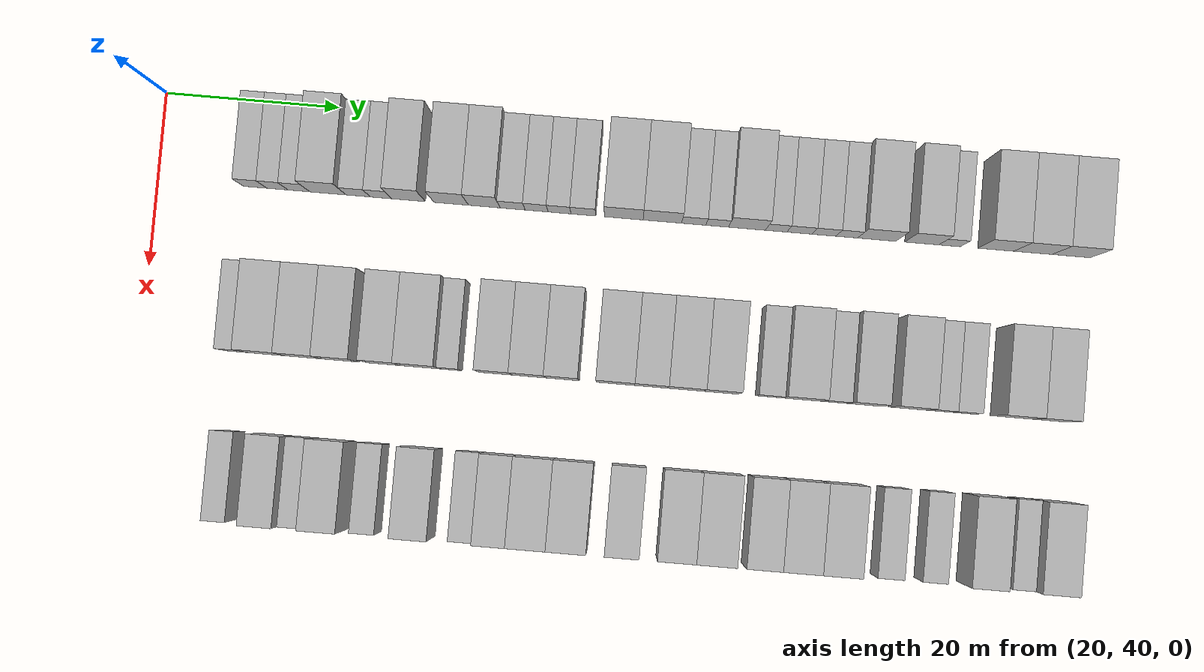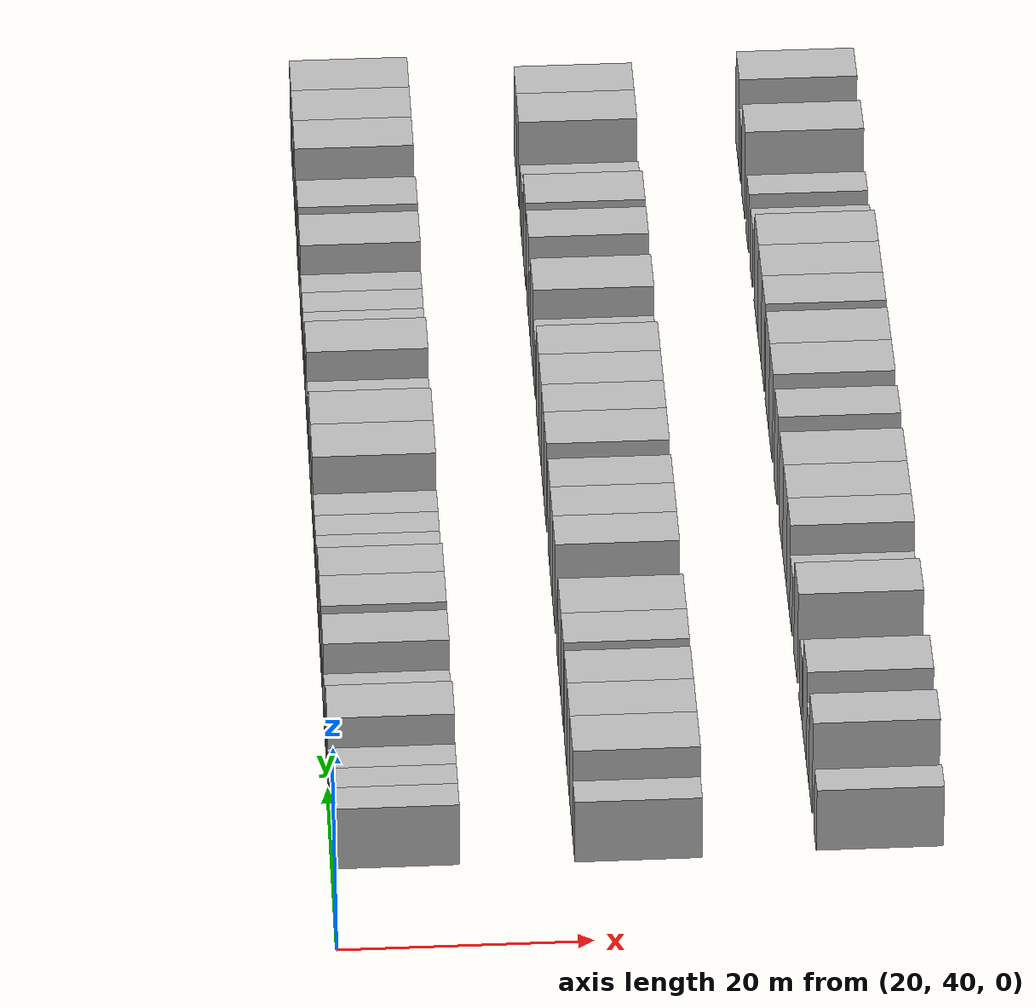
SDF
<sdf version="1.6">
 <world name="default">
  <model name="building_74">
   <static>1</static>
   <pose>25.0000 51.2624 0 0.000000 0.000000 0.000000</pose>
   <link name="link">
    <pose>0 0 3.00 0 0 0</pose>
    <collision name="collision"><geometry><box><size>10.0000 2.6960 6.0000</size></box></geometry></collision>
    <visual name="visual">
     <cast_shadows>0</cast_shadows>
     <geometry><box><size>10.0000 2.6960 6.0000</size></box></geometry>
     <material>
      <script>
       <uri>model://HANNAS_wall/materials/scripts</uri>
       <uri>model://HANNAS_wall/materials/textures</uri>
       <name>vrc/HANNAS_wall</name>
      </script>
     </material>
    </visual>
   </link>
  </model>
  <model name="building_75">
   <static>1</static>
   <pose>25.0000 53.8278 0 0.000000 0.000000 0.000000</pose>
   <link name="link">
    <pose>0 0 3.00 0 0 0</pose>
    <collision name="collision"><geometry><box><size>10.0000 2.4350 6.0000</size></box></geometry></collision>
    <visual name="visual">
     <cast_shadows>0</cast_shadows>
     <geometry><box><size>10.0000 2.4350 6.0000</size></box></geometry>
     <material>
      <script>
       <uri>model://HANNAS_wall/materials/scripts</uri>
       <uri>model://HANNAS_wall/materials/textures</uri>
       <name>vrc/HANNAS_wall</name>
      </script>
     </material>
    </visual>
   </link>
  </model>
  <model name="building_76">
   <static>1</static>
   <pose>25.0000 56.3023 0 0.000000 0.000000 0.000000</pose>
   <link name="link">
    <pose>0 0 3.00 0 0 0</pose>
    <collision name="collision"><geometry><box><size>10.0000 2.5139 6.0000</size></box></geometry></collision>
    <visual name="visual">
     <cast_shadows>0</cast_shadows>
     <geometry><box><size>10.0000 2.5139 6.0000</size></box></geometry>
     <material>
      <script>
       <uri>model://HANNAS_wall/materials/scripts</uri>
       <uri>model://HANNAS_wall/materials/textures</uri>
       <name>vrc/HANNAS_wall</name>
      </script>
     </material>
    </visual>
   </link>
  </model>
  <model name="building_77">
   <static>1</static>
   <pose>25.0000 59.6471 0 0.000000 0.000000 0.000000</pose>
   <link name="link">
    <pose>0 0 4.50 0 0 0</pose>
    <collision name="collision"><geometry><box><size>10.0000 4.1757 9.0000</size></box></geometry></collision>
    <visual name="visual">
     <cast_shadows>0</cast_shadows>
     <geometry><box><size>10.0000 4.1757 9.0000</size></box></geometry>
     <material>
      <script>
       <uri>model://HANNAS_wall/materials/scripts</uri>
       <uri>model://HANNAS_wall/materials/textures</uri>
       <name>vrc/HANNAS_wall</name>
      </script>
     </material>
    </visual>
   </link>
  </model>
  <model name="building_78">
   <static>1</static>
   <pose>25.0000 63.1370 0 0.000000 0.000000 0.000000</pose>
   <link name="link">
    <pose>0 0 3.00 0 0 0</pose>
    <collision name="collision"><geometry><box><size>10.0000 2.8041 6.0000</size></box></geometry></collision>
    <visual name="visual">
     <cast_shadows>0</cast_shadows>
     <geometry><box><size>10.0000 2.8041 6.0000</size></box></geometry>
     <material>
      <script>
       <uri>model://HANNAS_wall/materials/scripts</uri>
       <uri>model://HANNAS_wall/materials/textures</uri>
       <name>vrc/HANNAS_wall</name>
      </script>
     </material>
    </visual>
   </link>
  </model>
  <model name="building_79">
   <static>1</static>
   <pose>25.0000 65.7645 0 0.000000 0.000000 0.000000</pose>
   <link name="link">
    <pose>0 0 3.00 0 0 0</pose>
    <collision name="collision"><geometry><box><size>10.0000 2.4508 6.0000</size></box></geometry></collision>
    <visual name="visual">
     <cast_shadows>0</cast_shadows>
     <geometry><box><size>10.0000 2.4508 6.0000</size></box></geometry>
     <material>
      <script>
       <uri>model://HANNAS_wall/materials/scripts</uri>
       <uri>model://HANNAS_wall/materials/textures</uri>
       <name>vrc/HANNAS_wall</name>
      </script>
     </material>
    </visual>
   </link>
  </model>
  <model name="building_80">
   <static>1</static>
   <pose>25.0000 68.9372 0 0.000000 0.000000 0.000000</pose>
   <link name="link">
    <pose>0 0 4.50 0 0 0</pose>
    <collision name="collision"><geometry><box><size>10.0000 3.8946 9.0000</size></box></geometry></collision>
    <visual name="visual">
     <cast_shadows>0</cast_shadows>
     <geometry><box><size>10.0000 3.8946 9.0000</size></box></geometry>
     <material>
      <script>
       <uri>model://HANNAS_wall/materials/scripts</uri>
       <uri>model://HANNAS_wall/materials/textures</uri>
       <name>vrc/HANNAS_wall</name>
      </script>
     </material>
    </visual>
   </link>
  </model>
  <model name="building_81">
   <static>1</static>
   <pose>25.0000 73.8736 0 0.000000 0.000000 0.000000</pose>
   <link name="link">
    <pose>0 0 4.50 0 0 0</pose>
    <collision name="collision"><geometry><box><size>10.0000 3.9782 9.0000</size></box></geometry></collision>
    <visual name="visual">
     <cast_shadows>0</cast_shadows>
     <geometry><box><size>10.0000 3.9782 9.0000</size></box></geometry>
     <material>
      <script>
       <uri>model://HANNAS_wall/materials/scripts</uri>
       <uri>model://HANNAS_wall/materials/textures</uri>
       <name>vrc/HANNAS_wall</name>
      </script>
     </material>
    </visual>
   </link>
  </model>
  <model name="building_82">
   <static>1</static>
   <pose>25.0000 77.6937 0 0.000000 0.000000 0.000000</pose>
   <link name="link">
    <pose>0 0 4.50 0 0 0</pose>
    <collision name="collision"><geometry><box><size>10.0000 3.6619 9.0000</size></box></geometry></collision>
    <visual name="visual">
     <cast_shadows>0</cast_shadows>
     <geometry><box><size>10.0000 3.6619 9.0000</size></box></geometry>
     <material>
      <script>
       <uri>model://HANNAS_wall/materials/scripts</uri>
       <uri>model://HANNAS_wall/materials/textures</uri>
       <name>vrc/HANNAS_wall</name>
      </script>
     </material>
    </visual>
   </link>
  </model>
  <model name="building_83">
   <static>1</static>
   <pose>25.0000 80.9645 0 0.000000 0.000000 0.000000</pose>
   <link name="link">
    <pose>0 0 3.00 0 0 0</pose>
    <collision name="collision"><geometry><box><size>10.0000 2.8796 6.0000</size></box></geometry></collision>
    <visual name="visual">
     <cast_shadows>0</cast_shadows>
     <geometry><box><size>10.0000 2.8796 6.0000</size></box></geometry>
     <material>
      <script>
       <uri>model://HANNAS_wall/materials/scripts</uri>
       <uri>model://HANNAS_wall/materials/textures</uri>
       <name>vrc/HANNAS_wall</name>
      </script>
     </material>
    </visual>
   </link>
  </model>
  <model name="building_84">
   <static>1</static>
   <pose>25.0000 83.7266 0 0.000000 0.000000 0.000000</pose>
   <link name="link">
    <pose>0 0 3.00 0 0 0</pose>
    <collision name="collision"><geometry><box><size>10.0000 2.6447 6.0000</size></box></geometry></collision>
    <visual name="visual">
     <cast_shadows>0</cast_shadows>
     <geometry><box><size>10.0000 2.6447 6.0000</size></box></geometry>
     <material>
      <script>
       <uri>model://HANNAS_wall/materials/scripts</uri>
       <uri>model://HANNAS_wall/materials/textures</uri>
       <name>vrc/HANNAS_wall</name>
      </script>
     </material>
    </visual>
   </link>
  </model>
  <model name="building_85">
   <static>1</static>
   <pose>25.0000 86.3646 0 0.000000 0.000000 0.000000</pose>
   <link name="link">
    <pose>0 0 3.00 0 0 0</pose>
    <collision name="collision"><geometry><box><size>10.0000 2.6312 6.0000</size></box></geometry></collision>
    <visual name="visual">
     <cast_shadows>0</cast_shadows>
     <geometry><box><size>10.0000 2.6312 6.0000</size></box></geometry>
     <material>
      <script>
       <uri>model://HANNAS_wall/materials/scripts</uri>
       <uri>model://HANNAS_wall/materials/textures</uri>
       <name>vrc/HANNAS_wall</name>
      </script>
     </material>
    </visual>
   </link>
  </model>
  <model name="building_86">
   <static>1</static>
   <pose>25.0000 89.1039 0 0.000000 0.000000 0.000000</pose>
   <link name="link">
    <pose>0 0 3.00 0 0 0</pose>
    <collision name="collision"><geometry><box><size>10.0000 2.8476 6.0000</size></box></geometry></collision>
    <visual name="visual">
     <cast_shadows>0</cast_shadows>
     <geometry><box><size>10.0000 2.8476 6.0000</size></box></geometry>
     <material>
      <script>
       <uri>model://HANNAS_wall/materials/scripts</uri>
       <uri>model://HANNAS_wall/materials/textures</uri>
       <name>vrc/HANNAS_wall</name>
      </script>
     </material>
    </visual>
   </link>
  </model>
  <model name="building_87">
   <static>1</static>
   <pose>25.0000 93.7461 0 0.000000 0.000000 0.000000</pose>
   <link name="link">
    <pose>0 0 4.50 0 0 0</pose>
    <collision name="collision"><geometry><box><size>10.0000 4.4367 9.0000</size></box></geometry></collision>
    <visual name="visual">
     <cast_shadows>0</cast_shadows>
     <geometry><box><size>10.0000 4.4367 9.0000</size></box></geometry>
     <material>
      <script>
       <uri>model://HANNAS_wall/materials/scripts</uri>
       <uri>model://HANNAS_wall/materials/textures</uri>
       <name>vrc/HANNAS_wall</name>
      </script>
     </material>
    </visual>
   </link>
  </model>
  <model name="building_88">
   <static>1</static>
   <pose>25.0000 98.1743 0 0.000000 0.000000 0.000000</pose>
   <link name="link">
    <pose>0 0 4.50 0 0 0</pose>
    <collision name="collision"><geometry><box><size>10.0000 4.4197 9.0000</size></box></geometry></collision>
    <visual name="visual">
     <cast_shadows>0</cast_shadows>
     <geometry><box><size>10.0000 4.4197 9.0000</size></box></geometry>
     <material>
      <script>
       <uri>model://HANNAS_wall/materials/scripts</uri>
       <uri>model://HANNAS_wall/materials/textures</uri>
       <name>vrc/HANNAS_wall</name>
      </script>
     </material>
    </visual>
   </link>
  </model>
  <model name="building_89">
   <static>1</static>
   <pose>25.0000 101.7830 0 0.000000 0.000000 0.000000</pose>
   <link name="link">
    <pose>0 0 3.00 0 0 0</pose>
    <collision name="collision"><geometry><box><size>10.0000 2.7978 6.0000</size></box></geometry></collision>
    <visual name="visual">
     <cast_shadows>0</cast_shadows>
     <geometry><box><size>10.0000 2.7978 6.0000</size></box></geometry>
     <material>
      <script>
       <uri>model://HANNAS_wall/materials/scripts</uri>
       <uri>model://HANNAS_wall/materials/textures</uri>
       <name>vrc/HANNAS_wall</name>
      </script>
     </material>
    </visual>
   </link>
  </model>
  <model name="building_90">
   <static>1</static>
   <pose>25.0000 104.4857 0 0.000000 0.000000 0.000000</pose>
   <link name="link">
    <pose>0 0 3.00 0 0 0</pose>
    <collision name="collision"><geometry><box><size>10.0000 2.6077 6.0000</size></box></geometry></collision>
    <visual name="visual">
     <cast_shadows>0</cast_shadows>
     <geometry><box><size>10.0000 2.6077 6.0000</size></box></geometry>
     <material>
      <script>
       <uri>model://HANNAS_wall/materials/scripts</uri>
       <uri>model://HANNAS_wall/materials/textures</uri>
       <name>vrc/HANNAS_wall</name>
      </script>
     </material>
    </visual>
   </link>
  </model>
  <model name="building_91">
   <static>1</static>
   <pose>25.0000 107.9241 0 0.000000 0.000000 0.000000</pose>
   <link name="link">
    <pose>0 0 4.50 0 0 0</pose>
    <collision name="collision"><geometry><box><size>10.0000 4.2691 9.0000</size></box></geometry></collision>
    <visual name="visual">
     <cast_shadows>0</cast_shadows>
     <geometry><box><size>10.0000 4.2691 9.0000</size></box></geometry>
     <material>
      <script>
       <uri>model://HANNAS_wall/materials/scripts</uri>
       <uri>model://HANNAS_wall/materials/textures</uri>
       <name>vrc/HANNAS_wall</name>
      </script>
     </material>
    </visual>
   </link>
  </model>
  <model name="building_92">
   <static>1</static>
   <pose>25.0000 111.2944 0 0.000000 0.000000 0.000000</pose>
   <link name="link">
    <pose>0 0 3.00 0 0 0</pose>
    <collision name="collision"><geometry><box><size>10.0000 2.4715 6.0000</size></box></geometry></collision>
    <visual name="visual">
     <cast_shadows>0</cast_shadows>
     <geometry><box><size>10.0000 2.4715 6.0000</size></box></geometry>
     <material>
      <script>
       <uri>model://HANNAS_wall/materials/scripts</uri>
       <uri>model://HANNAS_wall/materials/textures</uri>
       <name>vrc/HANNAS_wall</name>
      </script>
     </material>
    </visual>
   </link>
  </model>
  <model name="building_93">
   <static>1</static>
   <pose>25.0000 113.9796 0 0.000000 0.000000 0.000000</pose>
   <link name="link">
    <pose>0 0 3.00 0 0 0</pose>
    <collision name="collision"><geometry><box><size>10.0000 2.8988 6.0000</size></box></geometry></collision>
    <visual name="visual">
     <cast_shadows>0</cast_shadows>
     <geometry><box><size>10.0000 2.8988 6.0000</size></box></geometry>
     <material>
      <script>
       <uri>model://HANNAS_wall/materials/scripts</uri>
       <uri>model://HANNAS_wall/materials/textures</uri>
       <name>vrc/HANNAS_wall</name>
      </script>
     </material>
    </visual>
   </link>
  </model>
  <model name="building_94">
   <static>1</static>
   <pose>25.0000 116.7982 0 0.000000 0.000000 0.000000</pose>
   <link name="link">
    <pose>0 0 3.00 0 0 0</pose>
    <collision name="collision"><geometry><box><size>10.0000 2.7384 6.0000</size></box></geometry></collision>
    <visual name="visual">
     <cast_shadows>0</cast_shadows>
     <geometry><box><size>10.0000 2.7384 6.0000</size></box></geometry>
     <material>
      <script>
       <uri>model://HANNAS_wall/materials/scripts</uri>
       <uri>model://HANNAS_wall/materials/textures</uri>
       <name>vrc/HANNAS_wall</name>
      </script>
     </material>
    </visual>
   </link>
  </model>
  <model name="building_95">
   <static>1</static>
   <pose>25.0000 119.4138 0 0.000000 0.000000 0.000000</pose>
   <link name="link">
    <pose>0 0 3.00 0 0 0</pose>
    <collision name="collision"><geometry><box><size>10.0000 2.4930 6.0000</size></box></geometry></collision>
    <visual name="visual">
     <cast_shadows>0</cast_shadows>
     <geometry><box><size>10.0000 2.4930 6.0000</size></box></geometry>
     <material>
      <script>
       <uri>model://HANNAS_wall/materials/scripts</uri>
       <uri>model://HANNAS_wall/materials/textures</uri>
       <name>vrc/HANNAS_wall</name>
      </script>
     </material>
    </visual>
   </link>
  </model>
  <model name="building_96">
   <static>1</static>
   <pose>25.0000 122.8654 0 0.000000 0.000000 0.000000</pose>
   <link name="link">
    <pose>0 0 4.50 0 0 0</pose>
    <collision name="collision"><geometry><box><size>10.0000 4.4101 9.0000</size></box></geometry></collision>
    <visual name="visual">
     <cast_shadows>0</cast_shadows>
     <geometry><box><size>10.0000 4.4101 9.0000</size></box></geometry>
     <material>
      <script>
       <uri>model://HANNAS_wall/materials/scripts</uri>
       <uri>model://HANNAS_wall/materials/textures</uri>
       <name>vrc/HANNAS_wall</name>
      </script>
     </material>
    </visual>
   </link>
  </model>
  <model name="building_97">
   <static>1</static>
   <pose>25.0000 128.0250 0 0.000000 0.000000 0.000000</pose>
   <link name="link">
    <pose>0 0 4.50 0 0 0</pose>
    <collision name="collision"><geometry><box><size>10.0000 3.9091 9.0000</size></box></geometry></collision>
    <visual name="visual">
     <cast_shadows>0</cast_shadows>
     <geometry><box><size>10.0000 3.9091 9.0000</size></box></geometry>
     <material>
      <script>
       <uri>model://HANNAS_wall/materials/scripts</uri>
       <uri>model://HANNAS_wall/materials/textures</uri>
       <name>vrc/HANNAS_wall</name>
      </script>
     </material>
    </visual>
   </link>
  </model>
  <model name="building_98">
   <static>1</static>
   <pose>25.0000 131.2295 0 0.000000 0.000000 0.000000</pose>
   <link name="link">
    <pose>0 0 3.00 0 0 0</pose>
    <collision name="collision"><geometry><box><size>10.0000 2.4999 6.0000</size></box></geometry></collision>
    <visual name="visual">
     <cast_shadows>0</cast_shadows>
     <geometry><box><size>10.0000 2.4999 6.0000</size></box></geometry>
     <material>
      <script>
       <uri>model://HANNAS_wall/materials/scripts</uri>
       <uri>model://HANNAS_wall/materials/textures</uri>
       <name>vrc/HANNAS_wall</name>
      </script>
     </material>
    </visual>
   </link>
  </model>
  <model name="building_99">
   <static>1</static>
   <pose>25.0000 136.5553 0 0.000000 0.000000 0.000000</pose>
   <link name="link">
    <pose>0 0 4.50 0 0 0</pose>
    <collision name="collision"><geometry><box><size>10.0000 4.1518 9.0000</size></box></geometry></collision>
    <visual name="visual">
     <cast_shadows>0</cast_shadows>
     <geometry><box><size>10.0000 4.1518 9.0000</size></box></geometry>
     <material>
      <script>
       <uri>model://HANNAS_wall/materials/scripts</uri>
       <uri>model://HANNAS_wall/materials/textures</uri>
       <name>vrc/HANNAS_wall</name>
      </script>
     </material>
    </visual>
   </link>
  </model>
  <model name="building_100">
   <static>1</static>
   <pose>25.0000 140.8244 0 0.000000 0.000000 0.000000</pose>
   <link name="link">
    <pose>0 0 4.50 0 0 0</pose>
    <collision name="collision"><geometry><box><size>10.0000 4.3863 9.0000</size></box></geometry></collision>
    <visual name="visual">
     <cast_shadows>0</cast_shadows>
     <geometry><box><size>10.0000 4.3863 9.0000</size></box></geometry>
     <material>
      <script>
       <uri>model://HANNAS_wall/materials/scripts</uri>
       <uri>model://HANNAS_wall/materials/textures</uri>
       <name>vrc/HANNAS_wall</name>
      </script>
     </material>
    </visual>
   </link>
  </model>
  <model name="building_101">
   <static>1</static>
   <pose>25.0000 145.2146 0 0.000000 0.000000 0.000000</pose>
   <link name="link">
    <pose>0 0 4.50 0 0 0</pose>
    <collision name="collision"><geometry><box><size>10.0000 4.3941 9.0000</size></box></geometry></collision>
    <visual name="visual">
     <cast_shadows>0</cast_shadows>
     <geometry><box><size>10.0000 4.3941 9.0000</size></box></geometry>
     <material>
      <script>
       <uri>model://HANNAS_wall/materials/scripts</uri>
       <uri>model://HANNAS_wall/materials/textures</uri>
       <name>vrc/HANNAS_wall</name>
      </script>
     </material>
    </visual>
   </link>
  </model>
  <model name="building_196">
   <static>1</static>
   <pose>44.0000 51.0408 0 0.000000 0.000000 0.000000</pose>
   <link name="link">
    <pose>0 0 3.00 0 0 0</pose>
    <collision name="collision"><geometry><box><size>10.0000 2.6519 6.0000</size></box></geometry></collision>
    <visual name="visual">
     <cast_shadows>0</cast_shadows>
     <geometry><box><size>10.0000 2.6519 6.0000</size></box></geometry>
     <material>
      <script>
       <uri>model://HANNAS_wall/materials/scripts</uri>
       <uri>model://HANNAS_wall/materials/textures</uri>
       <name>vrc/HANNAS_wall</name>
      </script>
     </material>
    </visual>
   </link>
  </model>
  <model name="building_197">
   <static>1</static>
   <pose>44.0000 54.5911 0 0.000000 0.000000 0.000000</pose>
   <link name="link">
    <pose>0 0 4.50 0 0 0</pose>
    <collision name="collision"><geometry><box><size>10.0000 4.4487 9.0000</size></box></geometry></collision>
    <visual name="visual">
     <cast_shadows>0</cast_shadows>
     <geometry><box><size>10.0000 4.4487 9.0000</size></box></geometry>
     <material>
      <script>
       <uri>model://HANNAS_wall/materials/scripts</uri>
       <uri>model://HANNAS_wall/materials/textures</uri>
       <name>vrc/HANNAS_wall</name>
      </script>
     </material>
    </visual>
   </link>
  </model>
  <model name="building_198">
   <static>1</static>
   <pose>44.0000 58.9009 0 0.000000 0.000000 0.000000</pose>
   <link name="link">
    <pose>0 0 4.50 0 0 0</pose>
    <collision name="collision"><geometry><box><size>10.0000 4.1709 9.0000</size></box></geometry></collision>
    <visual name="visual">
     <cast_shadows>0</cast_shadows>
     <geometry><box><size>10.0000 4.1709 9.0000</size></box></geometry>
     <material>
      <script>
       <uri>model://HANNAS_wall/materials/scripts</uri>
       <uri>model://HANNAS_wall/materials/textures</uri>
       <name>vrc/HANNAS_wall</name>
      </script>
     </material>
    </visual>
   </link>
  </model>
  <model name="building_199">
   <static>1</static>
   <pose>44.0000 63.0461 0 0.000000 0.000000 0.000000</pose>
   <link name="link">
    <pose>0 0 4.50 0 0 0</pose>
    <collision name="collision"><geometry><box><size>10.0000 4.1196 9.0000</size></box></geometry></collision>
    <visual name="visual">
     <cast_shadows>0</cast_shadows>
     <geometry><box><size>10.0000 4.1196 9.0000</size></box></geometry>
     <material>
      <script>
       <uri>model://HANNAS_wall/materials/scripts</uri>
       <uri>model://HANNAS_wall/materials/textures</uri>
       <name>vrc/HANNAS_wall</name>
      </script>
     </material>
    </visual>
   </link>
  </model>
  <model name="building_200">
   <static>1</static>
   <pose>44.0000 68.0249 0 0.000000 0.000000 0.000000</pose>
   <link name="link">
    <pose>0 0 4.50 0 0 0</pose>
    <collision name="collision"><geometry><box><size>10.0000 3.8380 9.0000</size></box></geometry></collision>
    <visual name="visual">
     <cast_shadows>0</cast_shadows>
     <geometry><box><size>10.0000 3.8380 9.0000</size></box></geometry>
     <material>
      <script>
       <uri>model://HANNAS_wall/materials/scripts</uri>
       <uri>model://HANNAS_wall/materials/textures</uri>
       <name>vrc/HANNAS_wall</name>
      </script>
     </material>
    </visual>
   </link>
  </model>
  <model name="building_201">
   <static>1</static>
   <pose>44.0000 72.1924 0 0.000000 0.000000 0.000000</pose>
   <link name="link">
    <pose>0 0 4.50 0 0 0</pose>
    <collision name="collision"><geometry><box><size>10.0000 4.4969 9.0000</size></box></geometry></collision>
    <visual name="visual">
     <cast_shadows>0</cast_shadows>
     <geometry><box><size>10.0000 4.4969 9.0000</size></box></geometry>
     <material>
      <script>
       <uri>model://HANNAS_wall/materials/scripts</uri>
       <uri>model://HANNAS_wall/materials/textures</uri>
       <name>vrc/HANNAS_wall</name>
      </script>
     </material>
    </visual>
   </link>
  </model>
  <model name="building_202">
   <static>1</static>
   <pose>44.0000 75.6455 0 0.000000 0.000000 0.000000</pose>
   <link name="link">
    <pose>0 0 3.00 0 0 0</pose>
    <collision name="collision"><geometry><box><size>10.0000 2.4093 6.0000</size></box></geometry></collision>
    <visual name="visual">
     <cast_shadows>0</cast_shadows>
     <geometry><box><size>10.0000 2.4093 6.0000</size></box></geometry>
     <material>
      <script>
       <uri>model://HANNAS_wall/materials/scripts</uri>
       <uri>model://HANNAS_wall/materials/textures</uri>
       <name>vrc/HANNAS_wall</name>
      </script>
     </material>
    </visual>
   </link>
  </model>
  <model name="building_203">
   <static>1</static>
   <pose>44.0000 80.7567 0 0.000000 0.000000 0.000000</pose>
   <link name="link">
    <pose>0 0 4.50 0 0 0</pose>
    <collision name="collision"><geometry><box><size>10.0000 3.8132 9.0000</size></box></geometry></collision>
    <visual name="visual">
     <cast_shadows>0</cast_shadows>
     <geometry><box><size>10.0000 3.8132 9.0000</size></box></geometry>
     <material>
      <script>
       <uri>model://HANNAS_wall/materials/scripts</uri>
       <uri>model://HANNAS_wall/materials/textures</uri>
       <name>vrc/HANNAS_wall</name>
      </script>
     </material>
    </visual>
   </link>
  </model>
  <model name="building_204">
   <static>1</static>
   <pose>44.0000 84.5862 0 0.000000 0.000000 0.000000</pose>
   <link name="link">
    <pose>0 0 4.50 0 0 0</pose>
    <collision name="collision"><geometry><box><size>10.0000 3.8456 9.0000</size></box></geometry></collision>
    <visual name="visual">
     <cast_shadows>0</cast_shadows>
     <geometry><box><size>10.0000 3.8456 9.0000</size></box></geometry>
     <material>
      <script>
       <uri>model://HANNAS_wall/materials/scripts</uri>
       <uri>model://HANNAS_wall/materials/textures</uri>
       <name>vrc/HANNAS_wall</name>
      </script>
     </material>
    </visual>
   </link>
  </model>
  <model name="building_205">
   <static>1</static>
   <pose>44.0000 88.3862 0 0.000000 0.000000 0.000000</pose>
   <link name="link">
    <pose>0 0 4.50 0 0 0</pose>
    <collision name="collision"><geometry><box><size>10.0000 3.7543 9.0000</size></box></geometry></collision>
    <visual name="visual">
     <cast_shadows>0</cast_shadows>
     <geometry><box><size>10.0000 3.7543 9.0000</size></box></geometry>
     <material>
      <script>
       <uri>model://HANNAS_wall/materials/scripts</uri>
       <uri>model://HANNAS_wall/materials/textures</uri>
       <name>vrc/HANNAS_wall</name>
      </script>
     </material>
    </visual>
   </link>
  </model>
  <model name="building_206">
   <static>1</static>
   <pose>44.0000 94.4235 0 0.000000 0.000000 0.000000</pose>
   <link name="link">
    <pose>0 0 4.50 0 0 0</pose>
    <collision name="collision"><geometry><box><size>10.0000 4.3204 9.0000</size></box></geometry></collision>
    <visual name="visual">
     <cast_shadows>0</cast_shadows>
     <geometry><box><size>10.0000 4.3204 9.0000</size></box></geometry>
     <material>
      <script>
       <uri>model://HANNAS_wall/materials/scripts</uri>
       <uri>model://HANNAS_wall/materials/textures</uri>
       <name>vrc/HANNAS_wall</name>
      </script>
     </material>
    </visual>
   </link>
  </model>
  <model name="building_207">
   <static>1</static>
   <pose>44.0000 98.4523 0 0.000000 0.000000 0.000000</pose>
   <link name="link">
    <pose>0 0 4.50 0 0 0</pose>
    <collision name="collision"><geometry><box><size>10.0000 3.7372 9.0000</size></box></geometry></collision>
    <visual name="visual">
     <cast_shadows>0</cast_shadows>
     <geometry><box><size>10.0000 3.7372 9.0000</size></box></geometry>
     <material>
      <script>
       <uri>model://HANNAS_wall/materials/scripts</uri>
       <uri>model://HANNAS_wall/materials/textures</uri>
       <name>vrc/HANNAS_wall</name>
      </script>
     </material>
    </visual>
   </link>
  </model>
  <model name="building_208">
   <static>1</static>
   <pose>44.0000 102.3821 0 0.000000 0.000000 0.000000</pose>
   <link name="link">
    <pose>0 0 4.50 0 0 0</pose>
    <collision name="collision"><geometry><box><size>10.0000 4.1223 9.0000</size></box></geometry></collision>
    <visual name="visual">
     <cast_shadows>0</cast_shadows>
     <geometry><box><size>10.0000 4.1223 9.0000</size></box></geometry>
     <material>
      <script>
       <uri>model://HANNAS_wall/materials/scripts</uri>
       <uri>model://HANNAS_wall/materials/textures</uri>
       <name>vrc/HANNAS_wall</name>
      </script>
     </material>
    </visual>
   </link>
  </model>
  <model name="building_209">
   <static>1</static>
   <pose>44.0000 106.4245 0 0.000000 0.000000 0.000000</pose>
   <link name="link">
    <pose>0 0 4.50 0 0 0</pose>
    <collision name="collision"><geometry><box><size>10.0000 3.9626 9.0000</size></box></geometry></collision>
    <visual name="visual">
     <cast_shadows>0</cast_shadows>
     <geometry><box><size>10.0000 3.9626 9.0000</size></box></geometry>
     <material>
      <script>
       <uri>model://HANNAS_wall/materials/scripts</uri>
       <uri>model://HANNAS_wall/materials/textures</uri>
       <name>vrc/HANNAS_wall</name>
      </script>
     </material>
    </visual>
   </link>
  </model>
  <model name="building_210">
   <static>1</static>
   <pose>44.0000 111.8694 0 0.000000 0.000000 0.000000</pose>
   <link name="link">
    <pose>0 0 3.00 0 0 0</pose>
    <collision name="collision"><geometry><box><size>10.0000 2.9271 6.0000</size></box></geometry></collision>
    <visual name="visual">
     <cast_shadows>0</cast_shadows>
     <geometry><box><size>10.0000 2.9271 6.0000</size></box></geometry>
     <material>
      <script>
       <uri>model://HANNAS_wall/materials/scripts</uri>
       <uri>model://HANNAS_wall/materials/textures</uri>
       <name>vrc/HANNAS_wall</name>
      </script>
     </material>
    </visual>
   </link>
  </model>
  <model name="building_211">
   <static>1</static>
   <pose>44.0000 115.5755 0 0.000000 0.000000 0.000000</pose>
   <link name="link">
    <pose>0 0 4.50 0 0 0</pose>
    <collision name="collision"><geometry><box><size>10.0000 4.4851 9.0000</size></box></geometry></collision>
    <visual name="visual">
     <cast_shadows>0</cast_shadows>
     <geometry><box><size>10.0000 4.4851 9.0000</size></box></geometry>
     <material>
      <script>
       <uri>model://HANNAS_wall/materials/scripts</uri>
       <uri>model://HANNAS_wall/materials/textures</uri>
       <name>vrc/HANNAS_wall</name>
      </script>
     </material>
    </visual>
   </link>
  </model>
  <model name="building_212">
   <static>1</static>
   <pose>44.0000 119.3002 0 0.000000 0.000000 0.000000</pose>
   <link name="link">
    <pose>0 0 3.00 0 0 0</pose>
    <collision name="collision"><geometry><box><size>10.0000 2.9643 6.0000</size></box></geometry></collision>
    <visual name="visual">
     <cast_shadows>0</cast_shadows>
     <geometry><box><size>10.0000 2.9643 6.0000</size></box></geometry>
     <material>
      <script>
       <uri>model://HANNAS_wall/materials/scripts</uri>
       <uri>model://HANNAS_wall/materials/textures</uri>
       <name>vrc/HANNAS_wall</name>
      </script>
     </material>
    </visual>
   </link>
  </model>
  <model name="building_213">
   <static>1</static>
   <pose>44.0000 122.6978 0 0.000000 0.000000 0.000000</pose>
   <link name="link">
    <pose>0 0 4.50 0 0 0</pose>
    <collision name="collision"><geometry><box><size>10.0000 3.8308 9.0000</size></box></geometry></collision>
    <visual name="visual">
     <cast_shadows>0</cast_shadows>
     <geometry><box><size>10.0000 3.8308 9.0000</size></box></geometry>
     <material>
      <script>
       <uri>model://HANNAS_wall/materials/scripts</uri>
       <uri>model://HANNAS_wall/materials/textures</uri>
       <name>vrc/HANNAS_wall</name>
      </script>
     </material>
    </visual>
   </link>
  </model>
  <model name="building_214">
   <static>1</static>
   <pose>44.0000 127.6751 0 0.000000 0.000000 0.000000</pose>
   <link name="link">
    <pose>0 0 4.50 0 0 0</pose>
    <collision name="collision"><geometry><box><size>10.0000 4.1238 9.0000</size></box></geometry></collision>
    <visual name="visual">
     <cast_shadows>0</cast_shadows>
     <geometry><box><size>10.0000 4.1238 9.0000</size></box></geometry>
     <material>
      <script>
       <uri>model://HANNAS_wall/materials/scripts</uri>
       <uri>model://HANNAS_wall/materials/textures</uri>
       <name>vrc/HANNAS_wall</name>
      </script>
     </material>
    </visual>
   </link>
  </model>
  <model name="building_215">
   <static>1</static>
   <pose>44.0000 131.1288 0 0.000000 0.000000 0.000000</pose>
   <link name="link">
    <pose>0 0 3.00 0 0 0</pose>
    <collision name="collision"><geometry><box><size>10.0000 2.7836 6.0000</size></box></geometry></collision>
    <visual name="visual">
     <cast_shadows>0</cast_shadows>
     <geometry><box><size>10.0000 2.7836 6.0000</size></box></geometry>
     <material>
      <script>
       <uri>model://HANNAS_wall/materials/scripts</uri>
       <uri>model://HANNAS_wall/materials/textures</uri>
       <name>vrc/HANNAS_wall</name>
      </script>
     </material>
    </visual>
   </link>
  </model>
  <model name="building_216">
   <static>1</static>
   <pose>44.0000 133.9061 0 0.000000 0.000000 0.000000</pose>
   <link name="link">
    <pose>0 0 3.00 0 0 0</pose>
    <collision name="collision"><geometry><box><size>10.0000 2.7711 6.0000</size></box></geometry></collision>
    <visual name="visual">
     <cast_shadows>0</cast_shadows>
     <geometry><box><size>10.0000 2.7711 6.0000</size></box></geometry>
     <material>
      <script>
       <uri>model://HANNAS_wall/materials/scripts</uri>
       <uri>model://HANNAS_wall/materials/textures</uri>
       <name>vrc/HANNAS_wall</name>
      </script>
     </material>
    </visual>
   </link>
  </model>
  <model name="building_217">
   <static>1</static>
   <pose>44.0000 139.4028 0 0.000000 0.000000 0.000000</pose>
   <link name="link">
    <pose>0 0 4.50 0 0 0</pose>
    <collision name="collision"><geometry><box><size>10.0000 4.2223 9.0000</size></box></geometry></collision>
    <visual name="visual">
     <cast_shadows>0</cast_shadows>
     <geometry><box><size>10.0000 4.2223 9.0000</size></box></geometry>
     <material>
      <script>
       <uri>model://HANNAS_wall/materials/scripts</uri>
       <uri>model://HANNAS_wall/materials/textures</uri>
       <name>vrc/HANNAS_wall</name>
      </script>
     </material>
    </visual>
   </link>
  </model>
  <model name="building_218">
   <static>1</static>
   <pose>44.0000 143.5031 0 0.000000 0.000000 0.000000</pose>
   <link name="link">
    <pose>0 0 4.50 0 0 0</pose>
    <collision name="collision"><geometry><box><size>10.0000 3.9782 9.0000</size></box></geometry></collision>
    <visual name="visual">
     <cast_shadows>0</cast_shadows>
     <geometry><box><size>10.0000 3.9782 9.0000</size></box></geometry>
     <material>
      <script>
       <uri>model://HANNAS_wall/materials/scripts</uri>
       <uri>model://HANNAS_wall/materials/textures</uri>
       <name>vrc/HANNAS_wall</name>
      </script>
     </material>
    </visual>
   </link>
  </model>
  <model name="building_313">
   <static>1</static>
   <pose>63.0000 51.4433 0 0.000000 0.000000 0.000000</pose>
   <link name="link">
    <pose>0 0 3.00 0 0 0</pose>
    <collision name="collision"><geometry><box><size>10.0000 2.6755 6.0000</size></box></geometry></collision>
    <visual name="visual">
     <cast_shadows>0</cast_shadows>
     <geometry><box><size>10.0000 2.6755 6.0000</size></box></geometry>
     <material>
      <script>
       <uri>model://HANNAS_wall/materials/scripts</uri>
       <uri>model://HANNAS_wall/materials/textures</uri>
       <name>vrc/HANNAS_wall</name>
      </script>
     </material>
    </visual>
   </link>
  </model>
  <model name="building_314">
   <static>1</static>
   <pose>63.0000 56.6680 0 0.000000 0.000000 0.000000</pose>
   <link name="link">
    <pose>0 0 4.50 0 0 0</pose>
    <collision name="collision"><geometry><box><size>10.0000 3.7740 9.0000</size></box></geometry></collision>
    <visual name="visual">
     <cast_shadows>0</cast_shadows>
     <geometry><box><size>10.0000 3.7740 9.0000</size></box></geometry>
     <material>
      <script>
       <uri>model://HANNAS_wall/materials/scripts</uri>
       <uri>model://HANNAS_wall/materials/textures</uri>
       <name>vrc/HANNAS_wall</name>
      </script>
     </material>
    </visual>
   </link>
  </model>
  <model name="building_315">
   <static>1</static>
   <pose>63.0000 59.9032 0 0.000000 0.000000 0.000000</pose>
   <link name="link">
    <pose>0 0 3.00 0 0 0</pose>
    <collision name="collision"><geometry><box><size>10.0000 2.6964 6.0000</size></box></geometry></collision>
    <visual name="visual">
     <cast_shadows>0</cast_shadows>
     <geometry><box><size>10.0000 2.6964 6.0000</size></box></geometry>
     <material>
      <script>
       <uri>model://HANNAS_wall/materials/scripts</uri>
       <uri>model://HANNAS_wall/materials/textures</uri>
       <name>vrc/HANNAS_wall</name>
      </script>
     </material>
    </visual>
   </link>
  </model>
  <model name="building_316">
   <static>1</static>
   <pose>63.0000 63.3776 0 0.000000 0.000000 0.000000</pose>
   <link name="link">
    <pose>0 0 4.50 0 0 0</pose>
    <collision name="collision"><geometry><box><size>10.0000 4.2524 9.0000</size></box></geometry></collision>
    <visual name="visual">
     <cast_shadows>0</cast_shadows>
     <geometry><box><size>10.0000 4.2524 9.0000</size></box></geometry>
     <material>
      <script>
       <uri>model://HANNAS_wall/materials/scripts</uri>
       <uri>model://HANNAS_wall/materials/textures</uri>
       <name>vrc/HANNAS_wall</name>
      </script>
     </material>
    </visual>
   </link>
  </model>
  <model name="building_317">
   <static>1</static>
   <pose>63.0000 67.9003 0 0.000000 0.000000 0.000000</pose>
   <link name="link">
    <pose>0 0 3.00 0 0 0</pose>
    <collision name="collision"><geometry><box><size>10.0000 2.7930 6.0000</size></box></geometry></collision>
    <visual name="visual">
     <cast_shadows>0</cast_shadows>
     <geometry><box><size>10.0000 2.7930 6.0000</size></box></geometry>
     <material>
      <script>
       <uri>model://HANNAS_wall/materials/scripts</uri>
       <uri>model://HANNAS_wall/materials/textures</uri>
       <name>vrc/HANNAS_wall</name>
      </script>
     </material>
    </visual>
   </link>
  </model>
  <model name="building_318">
   <static>1</static>
   <pose>63.0000 73.3656 0 0.000000 0.000000 0.000000</pose>
   <link name="link">
    <pose>0 0 4.50 0 0 0</pose>
    <collision name="collision"><geometry><box><size>10.0000 4.1375 9.0000</size></box></geometry></collision>
    <visual name="visual">
     <cast_shadows>0</cast_shadows>
     <geometry><box><size>10.0000 4.1375 9.0000</size></box></geometry>
     <material>
      <script>
       <uri>model://HANNAS_wall/materials/scripts</uri>
       <uri>model://HANNAS_wall/materials/textures</uri>
       <name>vrc/HANNAS_wall</name>
      </script>
     </material>
    </visual>
   </link>
  </model>
  <model name="building_319">
   <static>1</static>
   <pose>63.0000 78.8588 0 0.000000 0.000000 0.000000</pose>
   <link name="link">
    <pose>0 0 3.00 0 0 0</pose>
    <collision name="collision"><geometry><box><size>10.0000 2.8490 6.0000</size></box></geometry></collision>
    <visual name="visual">
     <cast_shadows>0</cast_shadows>
     <geometry><box><size>10.0000 2.8490 6.0000</size></box></geometry>
     <material>
      <script>
       <uri>model://HANNAS_wall/materials/scripts</uri>
       <uri>model://HANNAS_wall/materials/textures</uri>
       <name>vrc/HANNAS_wall</name>
      </script>
     </material>
    </visual>
   </link>
  </model>
  <model name="building_320">
   <static>1</static>
   <pose>63.0000 82.1217 0 0.000000 0.000000 0.000000</pose>
   <link name="link">
    <pose>0 0 4.50 0 0 0</pose>
    <collision name="collision"><geometry><box><size>10.0000 3.6767 9.0000</size></box></geometry></collision>
    <visual name="visual">
     <cast_shadows>0</cast_shadows>
     <geometry><box><size>10.0000 3.6767 9.0000</size></box></geometry>
     <material>
      <script>
       <uri>model://HANNAS_wall/materials/scripts</uri>
       <uri>model://HANNAS_wall/materials/textures</uri>
       <name>vrc/HANNAS_wall</name>
      </script>
     </material>
    </visual>
   </link>
  </model>
  <model name="building_321">
   <static>1</static>
   <pose>63.0000 86.1668 0 0.000000 0.000000 0.000000</pose>
   <link name="link">
    <pose>0 0 4.50 0 0 0</pose>
    <collision name="collision"><geometry><box><size>10.0000 4.4137 9.0000</size></box></geometry></collision>
    <visual name="visual">
     <cast_shadows>0</cast_shadows>
     <geometry><box><size>10.0000 4.4137 9.0000</size></box></geometry>
     <material>
      <script>
       <uri>model://HANNAS_wall/materials/scripts</uri>
       <uri>model://HANNAS_wall/materials/textures</uri>
       <name>vrc/HANNAS_wall</name>
      </script>
     </material>
    </visual>
   </link>
  </model>
  <model name="building_322">
   <static>1</static>
   <pose>63.0000 90.5898 0 0.000000 0.000000 0.000000</pose>
   <link name="link">
    <pose>0 0 4.50 0 0 0</pose>
    <collision name="collision"><geometry><box><size>10.0000 4.4322 9.0000</size></box></geometry></collision>
    <visual name="visual">
     <cast_shadows>0</cast_shadows>
     <geometry><box><size>10.0000 4.4322 9.0000</size></box></geometry>
     <material>
      <script>
       <uri>model://HANNAS_wall/materials/scripts</uri>
       <uri>model://HANNAS_wall/materials/textures</uri>
       <name>vrc/HANNAS_wall</name>
      </script>
     </material>
    </visual>
   </link>
  </model>
  <model name="building_323">
   <static>1</static>
   <pose>63.0000 96.7080 0 0.000000 0.000000 0.000000</pose>
   <link name="link">
    <pose>0 0 4.50 0 0 0</pose>
    <collision name="collision"><geometry><box><size>10.0000 3.8043 9.0000</size></box></geometry></collision>
    <visual name="visual">
     <cast_shadows>0</cast_shadows>
     <geometry><box><size>10.0000 3.8043 9.0000</size></box></geometry>
     <material>
      <script>
       <uri>model://HANNAS_wall/materials/scripts</uri>
       <uri>model://HANNAS_wall/materials/textures</uri>
       <name>vrc/HANNAS_wall</name>
      </script>
     </material>
    </visual>
   </link>
  </model>
  <model name="building_324">
   <static>1</static>
   <pose>63.0000 102.7404 0 0.000000 0.000000 0.000000</pose>
   <link name="link">
    <pose>0 0 4.50 0 0 0</pose>
    <collision name="collision"><geometry><box><size>10.0000 4.2604 9.0000</size></box></geometry></collision>
    <visual name="visual">
     <cast_shadows>0</cast_shadows>
     <geometry><box><size>10.0000 4.2604 9.0000</size></box></geometry>
     <material>
      <script>
       <uri>model://HANNAS_wall/materials/scripts</uri>
       <uri>model://HANNAS_wall/materials/textures</uri>
       <name>vrc/HANNAS_wall</name>
      </script>
     </material>
    </visual>
   </link>
  </model>
  <model name="building_325">
   <static>1</static>
   <pose>63.0000 107.0971 0 0.000000 0.000000 0.000000</pose>
   <link name="link">
    <pose>0 0 4.50 0 0 0</pose>
    <collision name="collision"><geometry><box><size>10.0000 4.4532 9.0000</size></box></geometry></collision>
    <visual name="visual">
     <cast_shadows>0</cast_shadows>
     <geometry><box><size>10.0000 4.4532 9.0000</size></box></geometry>
     <material>
      <script>
       <uri>model://HANNAS_wall/materials/scripts</uri>
       <uri>model://HANNAS_wall/materials/textures</uri>
       <name>vrc/HANNAS_wall</name>
      </script>
     </material>
    </visual>
   </link>
  </model>
  <model name="building_326">
   <static>1</static>
   <pose>63.0000 112.3159 0 0.000000 0.000000 0.000000</pose>
   <link name="link">
    <pose>0 0 4.50 0 0 0</pose>
    <collision name="collision"><geometry><box><size>10.0000 3.9843 9.0000</size></box></geometry></collision>
    <visual name="visual">
     <cast_shadows>0</cast_shadows>
     <geometry><box><size>10.0000 3.9843 9.0000</size></box></geometry>
     <material>
      <script>
       <uri>model://HANNAS_wall/materials/scripts</uri>
       <uri>model://HANNAS_wall/materials/textures</uri>
       <name>vrc/HANNAS_wall</name>
      </script>
     </material>
    </visual>
   </link>
  </model>
  <model name="building_327">
   <static>1</static>
   <pose>63.0000 116.4760 0 0.000000 0.000000 0.000000</pose>
   <link name="link">
    <pose>0 0 4.50 0 0 0</pose>
    <collision name="collision"><geometry><box><size>10.0000 4.3360 9.0000</size></box></geometry></collision>
    <visual name="visual">
     <cast_shadows>0</cast_shadows>
     <geometry><box><size>10.0000 4.3360 9.0000</size></box></geometry>
     <material>
      <script>
       <uri>model://HANNAS_wall/materials/scripts</uri>
       <uri>model://HANNAS_wall/materials/textures</uri>
       <name>vrc/HANNAS_wall</name>
      </script>
     </material>
    </visual>
   </link>
  </model>
  <model name="building_328">
   <static>1</static>
   <pose>63.0000 120.8299 0 0.000000 0.000000 0.000000</pose>
   <link name="link">
    <pose>0 0 4.50 0 0 0</pose>
    <collision name="collision"><geometry><box><size>10.0000 4.3718 9.0000</size></box></geometry></collision>
    <visual name="visual">
     <cast_shadows>0</cast_shadows>
     <geometry><box><size>10.0000 4.3718 9.0000</size></box></geometry>
     <material>
      <script>
       <uri>model://HANNAS_wall/materials/scripts</uri>
       <uri>model://HANNAS_wall/materials/textures</uri>
       <name>vrc/HANNAS_wall</name>
      </script>
     </material>
    </visual>
   </link>
  </model>
  <model name="building_329">
   <static>1</static>
   <pose>63.0000 126.5033 0 0.000000 0.000000 0.000000</pose>
   <link name="link">
    <pose>0 0 3.00 0 0 0</pose>
    <collision name="collision"><geometry><box><size>10.0000 2.9750 6.0000</size></box></geometry></collision>
    <visual name="visual">
     <cast_shadows>0</cast_shadows>
     <geometry><box><size>10.0000 2.9750 6.0000</size></box></geometry>
     <material>
      <script>
       <uri>model://HANNAS_wall/materials/scripts</uri>
       <uri>model://HANNAS_wall/materials/textures</uri>
       <name>vrc/HANNAS_wall</name>
      </script>
     </material>
    </visual>
   </link>
  </model>
  <model name="building_330">
   <static>1</static>
   <pose>63.0000 131.3931 0 0.000000 0.000000 0.000000</pose>
   <link name="link">
    <pose>0 0 3.00 0 0 0</pose>
    <collision name="collision"><geometry><box><size>10.0000 2.8046 6.0000</size></box></geometry></collision>
    <visual name="visual">
     <cast_shadows>0</cast_shadows>
     <geometry><box><size>10.0000 2.8046 6.0000</size></box></geometry>
     <material>
      <script>
       <uri>model://HANNAS_wall/materials/scripts</uri>
       <uri>model://HANNAS_wall/materials/textures</uri>
       <name>vrc/HANNAS_wall</name>
      </script>
     </material>
    </visual>
   </link>
  </model>
  <model name="building_331">
   <static>1</static>
   <pose>63.0000 136.8448 0 0.000000 0.000000 0.000000</pose>
   <link name="link">
    <pose>0 0 4.50 0 0 0</pose>
    <collision name="collision"><geometry><box><size>10.0000 4.0989 9.0000</size></box></geometry></collision>
    <visual name="visual">
     <cast_shadows>0</cast_shadows>
     <geometry><box><size>10.0000 4.0989 9.0000</size></box></geometry>
     <material>
      <script>
       <uri>model://HANNAS_wall/materials/scripts</uri>
       <uri>model://HANNAS_wall/materials/textures</uri>
       <name>vrc/HANNAS_wall</name>
      </script>
     </material>
    </visual>
   </link>
  </model>
  <model name="building_332">
   <static>1</static>
   <pose>63.0000 141.1889 0 0.000000 0.000000 0.000000</pose>
   <link name="link">
    <pose>0 0 3.00 0 0 0</pose>
    <collision name="collision"><geometry><box><size>10.0000 2.5893 6.0000</size></box></geometry></collision>
    <visual name="visual">
     <cast_shadows>0</cast_shadows>
     <geometry><box><size>10.0000 2.5893 6.0000</size></box></geometry>
     <material>
      <script>
       <uri>model://HANNAS_wall/materials/scripts</uri>
       <uri>model://HANNAS_wall/materials/textures</uri>
       <name>vrc/HANNAS_wall</name>
      </script>
     </material>
    </visual>
   </link>
  </model>
  <model name="building_333">
   <static>1</static>
   <pose>63.0000 144.5612 0 0.000000 0.000000 0.000000</pose>
   <link name="link">
    <pose>0 0 4.50 0 0 0</pose>
    <collision name="collision"><geometry><box><size>10.0000 4.1553 9.0000</size></box></geometry></collision>
    <visual name="visual">
     <cast_shadows>0</cast_shadows>
     <geometry><box><size>10.0000 4.1553 9.0000</size></box></geometry>
     <material>
      <script>
       <uri>model://HANNAS_wall/materials/scripts</uri>
       <uri>model://HANNAS_wall/materials/textures</uri>
       <name>vrc/HANNAS_wall</name>
      </script>
     </material>
    </visual>
   </link>
  </model>
 </world>
</sdf>
